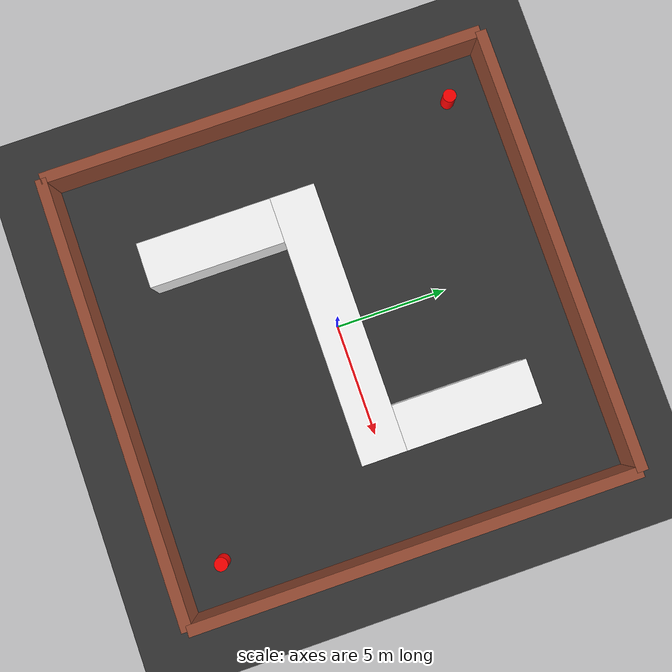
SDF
<sdf version="1.8">
 <world name="circuito_autonomo">
  <plugin filename="gz-sim-physics-system" name="gz::sim::systems::Physics"/>
  <plugin filename="gz-sim-user-commands-system" name="gz::sim::systems::UserCommands"/>
  <plugin filename="gz-sim-scene-broadcaster-system" name="gz::sim::systems::SceneBroadcaster"/>
  <plugin filename="gz-sim-sensors-system" name="gz::sim::systems::Sensors">
   <render_engine>ogre2</render_engine>
  </plugin>
  <light type="directional" name="sun">
   <pose>0 0 10 0 0 0</pose>
   <diffuse>0.8 0.8 0.8 1</diffuse>
   <specular>0.2 0.2 0.2 1</specular>
   <attenuation>
    <range>1000</range>
    <constant>0.9</constant>
    <linear>0.01</linear>
    <quadratic>0.001</quadratic>
   </attenuation>
   <direction>-0.5 0.1 -0.9</direction>
  </light>
  <model name="suelo_oscuro">
   <static>true</static>
   <link name="link">
    <collision name="collision">
     <geometry><plane><normal>0 0 1</normal><size>100 100</size></plane></geometry>
    </collision>
    <visual name="visual">
     <geometry><plane><normal>0 0 1</normal><size>100 100</size></plane></geometry>
     <material>
      <ambient>0.2 0.2 0.2 1</ambient>
      <diffuse>0.2 0.2 0.2 1</diffuse>
      <specular>0.1 0.1 0.1 1</specular>
     </material>
    </visual>
   </link>
  </model>
  <model name="pared_norte">
   <pose>0 10 1 0 0 0</pose>
   <static>true</static>
   <link name="link">
    <collision name="c"><geometry><box><size>20 0.5 2</size></box></geometry></collision>
    <visual name="v">
     <geometry><box><size>20 0.5 2</size></box></geometry>
     <material><diffuse>0.6 0.3 0.2 1</diffuse></material>
    </visual>
   </link>
  </model>
  <model name="pared_sur">
   <pose>0 -10 1 0 0 0</pose>
   <static>true</static>
   <link name="link">
    <collision name="c"><geometry><box><size>20 0.5 2</size></box></geometry></collision>
    <visual name="v">
     <geometry><box><size>20 0.5 2</size></box></geometry>
     <material><diffuse>0.6 0.3 0.2 1</diffuse></material>
    </visual>
   </link>
  </model>
  <model name="pared_este">
   <pose>10 0 1 0 0 0</pose>
   <static>true</static>
   <link name="link">
    <collision name="c"><geometry><box><size>0.5 20 2</size></box></geometry></collision>
    <visual name="v">
     <geometry><box><size>0.5 20 2</size></box></geometry>
     <material><diffuse>0.6 0.3 0.2 1</diffuse></material>
    </visual>
   </link>
  </model>
  <model name="pared_oeste">
   <pose>-10 0 1 0 0 0</pose>
   <static>true</static>
   <link name="link">
    <collision name="c"><geometry><box><size>0.5 20 2</size></box></geometry></collision>
    <visual name="v">
     <geometry><box><size>0.5 20 2</size></box></geometry>
     <material><diffuse>0.6 0.3 0.2 1</diffuse></material>
    </visual>
   </link>
  </model>
  <model name="muro_central">
   <pose>0 0 1 0 0 0</pose>
   <static>true</static>
   <link name="link">
    <visual name="v">
     <geometry><box><size>12 2 2</size></box></geometry>
     <material><diffuse>1 1 1 1</diffuse></material>
    </visual>
    <collision name="c"><geometry><box><size>12 2 2</size></box></geometry></collision>
   </link>
  </model>
  <model name="muro_t">
   <pose>5 4 1 0 0 0</pose>
   <static>true</static>
   <link name="link">
    <visual name="v">
     <geometry><box><size>2 6 2</size></box></geometry>
     <material><diffuse>1 1 1 1</diffuse></material>
    </visual>
    <collision name="c"><geometry><box><size>2 6 2</size></box></geometry></collision>
   </link>
  </model>
  <model name="muro_esquina">
   <pose>-5 -4 1 0 0 0</pose>
   <static>true</static>
   <link name="link">
    <visual name="v">
     <geometry><box><size>2 6 2</size></box></geometry>
     <material><diffuse>1 1 1 1</diffuse></material>
    </visual>
    <collision name="c"><geometry><box><size>2 6 2</size></box></geometry></collision>
   </link>
  </model>
  <model name="obstaculo_1">
   <pose>8 -8 0.5 0 0 0</pose>
   <static>true</static>
   <link name="link">
    <visual name="v">
     <geometry><cylinder><radius>0.3</radius><length>1</length></cylinder></geometry>
     <material><diffuse>1 0 0 1</diffuse></material>
    </visual>
    <collision name="c">
     <geometry><cylinder><radius>0.3</radius><length>1</length></cylinder></geometry>
    </collision>
   </link>
  </model>
  <model name="obstaculo_2">
   <pose>-8 8 0.5 0 0 0</pose>
   <static>true</static>
   <link name="link">
    <visual name="v">
     <geometry><cylinder><radius>0.3</radius><length>1</length></cylinder></geometry>
     <material><diffuse>1 0 0 1</diffuse></material>
    </visual>
    <collision name="c">
     <geometry><cylinder><radius>0.3</radius><length>1</length></cylinder></geometry>
    </collision>
   </link>
  </model>
 </world>
</sdf>
